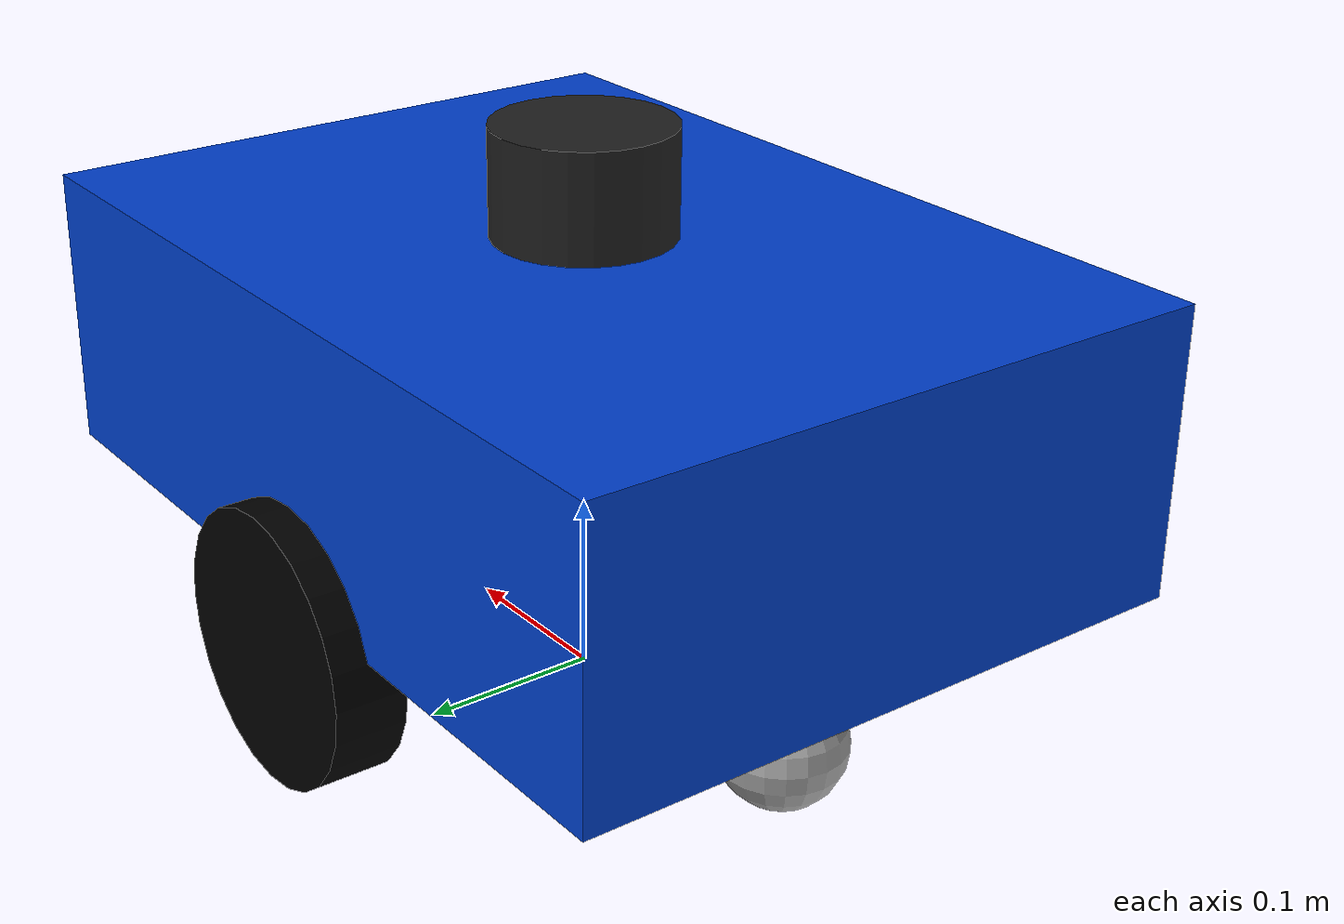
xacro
<?xml version="1.0"?>
<robot name="amr01" xmlns:xacro="http://www.ros.org/wiki/xacro">

  <xacro:arg name="use_sim" default="false"/>

  <xacro:include filename="$(find amr_description)/urdf/materials.xacro"/>
  <xacro:include filename="$(find amr_description)/urdf/amr_base.xacro"/>
  <xacro:include filename="$(find amr_description)/urdf/amr_ros2_control.xacro"/>

  <xacro:amr_ros2_control use_sim="$(arg use_sim)"/>

  <xacro:if value="$(arg use_sim)">
    <gazebo>
      <plugin
        filename="gz_ros2_control-system"
        name="gz_ros2_control::GazeboSimROS2ControlPlugin">

        <parameters>
          $(find amr_control)/config/controllers.yaml
        </parameters>

      </plugin>
    </gazebo>
  </xacro:if>

</robot>

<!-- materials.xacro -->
<robot xmlns:xacro="http://www.ros.org/wiki/xacro">

  <material name="mat_dark_gray">
    <color rgba="0.1 0.1 0.1 1.0"/>
  </material>

  <material name="mat_blue">
    <color rgba="0.0 0.25 0.8 1.0"/>
  </material>

  <material name="mat_black">
    <color rgba="0.0 0.0 0.0 1.0"/>
  </material>

  <material name="mat_light_gray">
    <color rgba="0.65 0.65 0.65 1.0"/>
  </material>

</robot>

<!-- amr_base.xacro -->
<robot xmlns:xacro="http://www.ros.org/wiki/xacro">

  <!-- Robot dimensions          -->

  <xacro:property name="base_length" value="0.50"/>
  <xacro:property name="base_width" value="0.36"/>
  <xacro:property name="base_height" value="0.16"/>

  <xacro:property name="wheel_radius" value="0.075"/>
  <xacro:property name="wheel_width" value="0.04"/>
  <xacro:property name="wheel_separation" value="0.36"/>

  <xacro:property name="caster_radius" value="0.035"/>
  <xacro:property name="base_clearance" value="0.02"/>

  <xacro:property name="lidar_radius" value="0.05"/>
  <xacro:property name="lidar_height" value="0.06"/>
  <xacro:property name="lidar_mass" value="0.3"/>
  <xacro:property name="lidar_z" value="${wheel_radius + base_clearance + base_height + lidar_height/2.0}"/>

  <!-- Approximate masses -->
  <xacro:property name="base_mass" value="8.0"/>
  <xacro:property name="wheel_mass" value="0.5"/>
  <xacro:property name="caster_mass" value="0.2"/>

  <!-- Inertial helper macros    -->

  <xacro:macro name="box_inertia" params="mass x y z">
    <inertial>
      <mass value="${mass}"/>
      <origin xyz="0 0 0" rpy="0 0 0"/>
      <inertia
        ixx="${(mass/12.0) * (y*y + z*z)}"
        ixy="0.0"
        ixz="0.0"
        iyy="${(mass/12.0) * (x*x + z*z)}"
        iyz="0.0"
        izz="${(mass/12.0) * (x*x + y*y)}"/>
    </inertial>
  </xacro:macro>

  <xacro:macro name="cylinder_inertia_y" params="mass radius length">
    <!-- Cylinder aligned with y-axis -->
    <inertial>
      <mass value="${mass}"/>
      <origin xyz="0 0 0" rpy="0 0 0"/>
      <inertia
        ixx="${(mass/12.0) * (3*radius*radius + length*length)}"
        ixy="0.0"
        ixz="0.0"
        iyy="${0.5 * mass * radius * radius}"
        iyz="0.0"
        izz="${(mass/12.0) * (3*radius*radius + length*length)}"/>
    </inertial>
  </xacro:macro>

  <xacro:macro name="sphere_inertia" params="mass radius">
    <inertial>
      <mass value="${mass}"/>
      <origin xyz="0 0 0" rpy="0 0 0"/>
      <inertia
        ixx="${0.4 * mass * radius * radius}"
        ixy="0.0"
        ixz="0.0"
        iyy="${0.4 * mass * radius * radius}"
        iyz="0.0"
        izz="${0.4 * mass * radius * radius}"/>
    </inertial>
  </xacro:macro>

  <!-- Base link                 -->

  <link name="base_link">
    <visual>
      <origin
        xyz="0 0 ${wheel_radius + base_clearance + base_height/2.0}"
        rpy="0 0 0"/>
      <geometry>
        <box size="${base_length} ${base_width} ${base_height}"/>
      </geometry>
      <material name="mat_blue"/>
    </visual>

    <collision>
      <origin
        xyz="0 0 ${wheel_radius + base_clearance + base_height/2.0}"
        rpy="0 0 0"/>
      <geometry>
        <box size="${base_length} ${base_width} ${base_height}"/>
      </geometry>
    </collision>

    <xacro:box_inertia
      mass="${base_mass}"
      x="${base_length}"
      y="${base_width}"
      z="${base_height}"/>
  </link>

  <!-- Left wheel                -->

  <link name="left_wheel_link">
    <visual>
      <!-- Cylinder axis in URDF is along z; rotate it so wheel axis aligns with Y -->
      <origin xyz="0 0 0" rpy="1.57079632679 0 0"/>
      <geometry>
        <cylinder radius="${wheel_radius}" length="${wheel_width}"/>
      </geometry>
      <material name="mat_black"/>
    </visual>

    <collision>
      <origin xyz="0 0 0" rpy="1.57079632679 0 0"/>
      <geometry>
        <cylinder radius="${wheel_radius}" length="${wheel_width}"/>
      </geometry>
    </collision>

    <xacro:cylinder_inertia_y
      mass="${wheel_mass}"
      radius="${wheel_radius}"
      length="${wheel_width}"/>
  </link>

  <joint name="left_wheel_joint" type="continuous">
    <parent link="base_link"/>
    <child link="left_wheel_link"/>
    <origin xyz="0 ${wheel_separation/2.0} ${wheel_radius}" rpy="0 0 0"/>
    <axis xyz="0 1 0"/>
  </joint>

  <!-- Right wheel               -->

  <link name="right_wheel_link">
    <visual>
      <origin xyz="0 0 0" rpy="1.57079632679 0 0"/>
      <geometry>
        <cylinder radius="${wheel_radius}" length="${wheel_width}"/>
      </geometry>
      <material name="mat_black"/>
    </visual>

    <collision>
      <origin xyz="0 0 0" rpy="1.57079632679 0 0"/>
      <geometry>
        <cylinder radius="${wheel_radius}" length="${wheel_width}"/>
      </geometry>
    </collision>

    <xacro:cylinder_inertia_y
      mass="${wheel_mass}"
      radius="${wheel_radius}"
      length="${wheel_width}"/>
  </link>

  <joint name="right_wheel_joint" type="continuous">
    <parent link="base_link"/>
    <child link="right_wheel_link"/>
    <origin xyz="0 ${-wheel_separation/2.0} ${wheel_radius}" rpy="0 0 0"/>
    <axis xyz="0 1 0"/>
  </joint>

  <!-- Front caster              -->

  <link name="front_caster_link">
    <visual>
      <origin xyz="0 0 0" rpy="0 0 0"/>
      <geometry>
        <sphere radius="${caster_radius}"/>
      </geometry>
      <material name="mat_light_gray"/>
    </visual>

    <collision>
      <origin xyz="0 0 0" rpy="0 0 0"/>
      <geometry>
        <sphere radius="${caster_radius}"/>
      </geometry>
    </collision>

    <xacro:sphere_inertia mass="${caster_mass}" radius="${caster_radius}"/>
  </link>

  <joint name="front_caster_joint" type="fixed">
    <parent link="base_link"/>
    <child link="front_caster_link"/>
    <origin xyz="${base_length/2.0 - 0.08} 0 ${caster_radius}" rpy="0 0 0"/>
  </joint>

  <!-- Back caster               -->

  <link name="back_caster_link">
    <visual>
      <origin xyz="0 0 0" rpy="0 0 0"/>
      <geometry>
        <sphere radius="${caster_radius}"/>
      </geometry>
      <material name="mat_light_gray"/>
    </visual>

    <collision>
      <origin xyz="0 0 0" rpy="0 0 0"/>
      <geometry>
        <sphere radius="${caster_radius}"/>
      </geometry>
    </collision>

    <xacro:sphere_inertia mass="${caster_mass}" radius="${caster_radius}"/>
  </link>

  <joint name="back_caster_joint" type="fixed">
    <parent link="base_link"/>
    <child link="back_caster_link"/>
    <origin xyz="${-base_length/2.0 + 0.08} 0 ${caster_radius}" rpy="0 0 0"/>
  </joint>

  <!-- LiDAR                     -->

  <link name="lidar_link">
    <visual>
      <origin xyz="0 0 0" rpy="0 0 0"/>
      <geometry>
        <cylinder radius="${lidar_radius}" length="${lidar_height}"/>
      </geometry>
      <material name="black"/>
    </visual>

    <collision>
      <origin xyz="0 0 0" rpy="0 0 0"/>
      <geometry>
        <cylinder radius="${lidar_radius}" length="${lidar_height}"/>
      </geometry>
    </collision>

    <inertial>
      <mass value="${lidar_mass}"/>
      <origin xyz="0 0 0" rpy="0 0 0"/>
      <inertia
        ixx="${(1.0/12.0) * lidar_mass * (3.0 * lidar_radius * lidar_radius + lidar_height * lidar_height)}"
        iyy="${(1.0/12.0) * lidar_mass * (3.0 * lidar_radius * lidar_radius + lidar_height * lidar_height)}"
        izz="${0.5 * lidar_mass * lidar_radius * lidar_radius}"
        ixy="0.0" ixz="0.0" iyz="0.0"/>
    </inertial>
  </link>

  <joint name="lidar_joint" type="fixed">
    <parent link="base_link"/>
    <child link="lidar_link"/>
    <origin xyz="0 0 ${lidar_z}" rpy="0 0 0"/>
  </joint>

  <!-- Gazebo friction settings  -->

  <gazebo reference="left_wheel_link">
    <mu1>1.0</mu1>
    <mu2>1.0</mu2>
  </gazebo>

  <gazebo reference="right_wheel_link">
    <mu1>1.0</mu1>
    <mu2>1.0</mu2>
  </gazebo>

  <gazebo reference="lidar_link">
    <sensor name="lidar_sensor" type="gpu_lidar">
      <update_rate>10</update_rate>
      <topic>scan</topic>
      <gz_frame_id>lidar_link</gz_frame_id>

      <lidar>
        <scan>
          <horizontal>
            <samples>720</samples>
            <resolution>1</resolution>
            <min_angle>-3.14159</min_angle>
            <max_angle>3.14159</max_angle>
          </horizontal>
        </scan>
        <range>
          <min>0.12</min>
          <max>12.0</max>
          <resolution>0.01</resolution>
        </range>
      </lidar>

      <always_on>true</always_on>
      <visualize>true</visualize>
    </sensor>
  </gazebo>

</robot>
